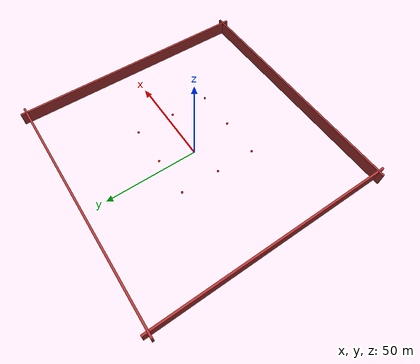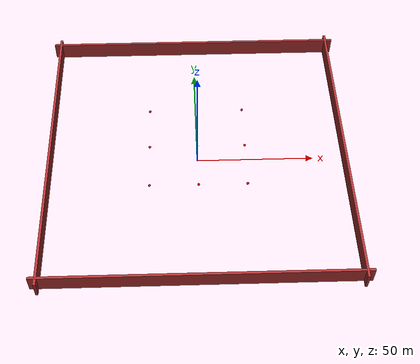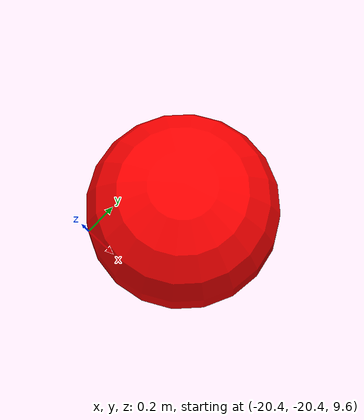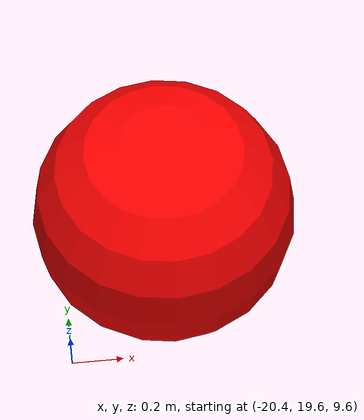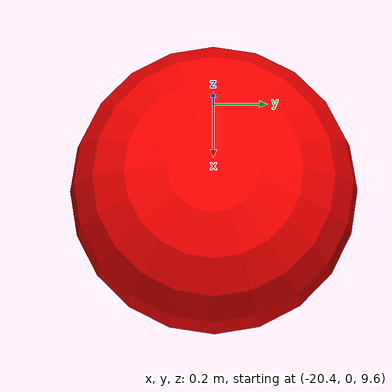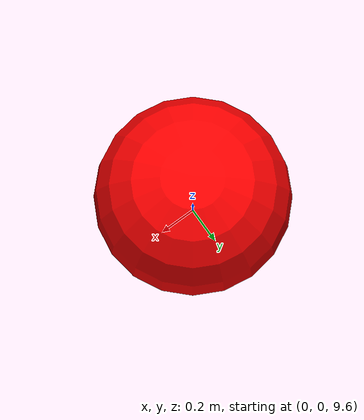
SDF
<sdf version="1.9">
 <world name="starting_environment">
  <physics name="1ms" type="ignored">
   <max_step_size>0.001</max_step_size>
   <real_time_factor>1.0</real_time_factor>
  </physics>
  <plugin filename="gz-sim-physics-system" name="gz::sim::systems::Physics"/>
  <plugin filename="gz-sim-user-commands-system" name="gz::sim::systems::UserCommands"/>
  <plugin filename="gz-sim-scene-broadcaster-system" name="gz::sim::systems::SceneBroadcaster"/>
  <plugin filename="gz-sim-sensors-system" name="gz::sim::systems::Sensors"/>
  <plugin filename="gz-sim-imu-system" name="gz::sim::systems::Imu"/>
  <plugin filename="gz-sim-contact-system" name="gz::sim::systems::Contact">
   <contact><collision>.*</collision></contact>
  </plugin>
  <scene>
   <ambient>0.9 0.8 0.6 1</ambient>
   <background>0.8 0.7 0.5 1</background>
   <sky><time>14</time><sunrise>6</sunrise><sunset>20</sunset></sky>
  </scene>
  <light type="directional" name="sun">
   <pose>0 0 50 0 0 0</pose>
   <diffuse>1.0 0.9 0.7 1</diffuse>
   <specular>0.3 0.25 0.2 1</specular>
   <attenuation>
    <range>2000</range>
    <constant>0.9</constant>
    <linear>0.001</linear>
    <quadratic>0.0001</quadratic>
   </attenuation>
   <direction>-0.3 0.2 -0.8</direction>
  </light>
  <include><uri>model://marker.sdf</uri><name>marker1</name><pose>20 20 10 0 0 0</pose></include>
  <include><uri>model://marker.sdf</uri><name>marker2</name><pose>0 20 10 0 0 0</pose></include>
  <include><uri>model://marker.sdf</uri><name>marker3</name><pose>-20 20 10 0 0 0</pose></include>
  <include><uri>model://marker.sdf</uri><name>marker4</name><pose>20 0 10 0 0 0</pose></include>
  <include><uri>model://marker.sdf</uri><name>marker5</name><pose>0 0 10 0 0 0</pose></include>
  <include><uri>model://marker.sdf</uri><name>marker6</name><pose>-20 0 10 0 0 0</pose></include>
  <include><uri>model://marker.sdf</uri><name>marker7</name><pose>20 -20 10 0 0 0</pose></include>
  <include><uri>model://marker.sdf</uri><name>marker8</name><pose>0 -20 10 0 0 0</pose></include>
  <include><uri>model://marker.sdf</uri><name>marker9</name><pose>-20 -20 10 0 0 0</pose></include>
  <model name="north_wall">
   <static>true</static>
   <pose>0 62 7.5 0 0 0</pose>
   <link name="link">
    <collision name="collision"><geometry><box><size>130 1 7.5</size></box></geometry></collision>
    <visual name="visual">
     <geometry><box><size>130 1 7.5</size></box></geometry>
     <material><ambient>0.7 0.2 0.2 1</ambient><diffuse>0.7 0.2 0.2 1</diffuse></material>
    </visual>
   </link>
  </model>
  <model name="south_wall">
   <static>true</static>
   <pose>0 -62 7.5 0 0 0</pose>
   <link name="link">
    <collision name="collision"><geometry><box><size>130 1 7.5</size></box></geometry></collision>
    <visual name="visual">
     <geometry><box><size>130 1 7.5</size></box></geometry>
     <material><ambient>0.7 0.2 0.2 1</ambient><diffuse>0.7 0.2 0.2 1</diffuse></material>
    </visual>
   </link>
  </model>
  <model name="east_wall">
   <static>true</static>
   <pose>62 0 7.5 0 0 0</pose>
   <link name="link">
    <collision name="collision"><geometry><box><size>1 130 7.5</size></box></geometry></collision>
    <visual name="visual">
     <geometry><box><size>1 130 7.5</size></box></geometry>
     <material><ambient>0.7 0.2 0.2 1</ambient><diffuse>0.7 0.2 0.2 1</diffuse></material>
    </visual>
   </link>
  </model>
  <model name="west_wall">
   <static>true</static>
   <pose>-62 0 7.5 0 0 0</pose>
   <link name="link">
    <collision name="collision"><geometry><box><size>1 130 7.5</size></box></geometry></collision>
    <visual name="visual">
     <geometry><box><size>1 130 7.5</size></box></geometry>
     <material><ambient>0.7 0.2 0.2 1</ambient><diffuse>0.7 0.2 0.2 1</diffuse></material>
    </visual>
   </link>
  </model>
 </world>
</sdf>

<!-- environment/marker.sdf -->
<sdf version="1.9">
<!--
    Author: GrijzePanda
-->
	<model name="poi_marker">
		<static>true</static>
		<link name="link">
			<visual name="visual">
				<geometry>
					<sphere>
						<radius>0.5</radius>
					</sphere>
				</geometry>
				<material>
					<ambient>1 0 0 1</ambient>
					<diffuse>1 0 0 1</diffuse>
				</material>
			</visual>
		</link>
	</model>
</sdf>
